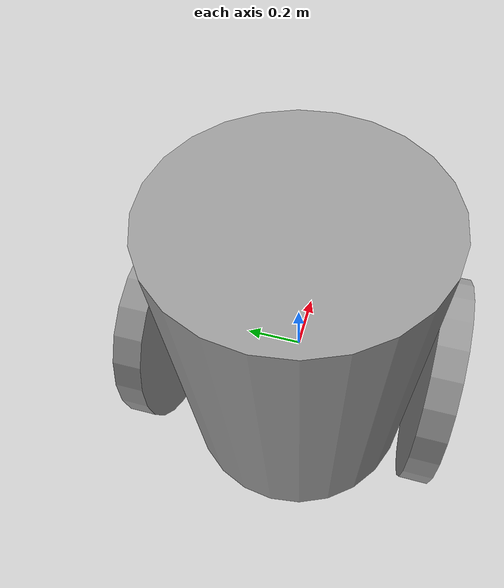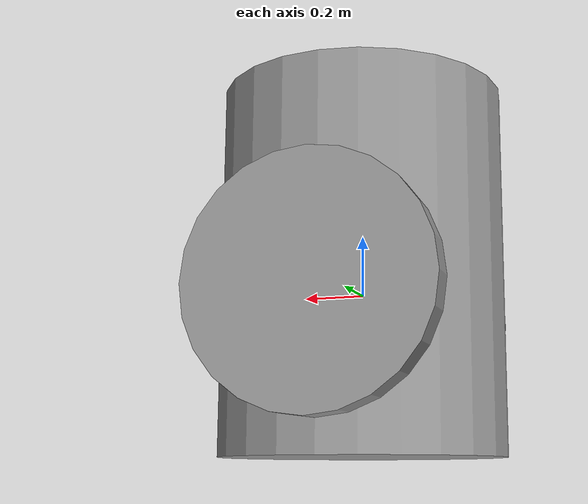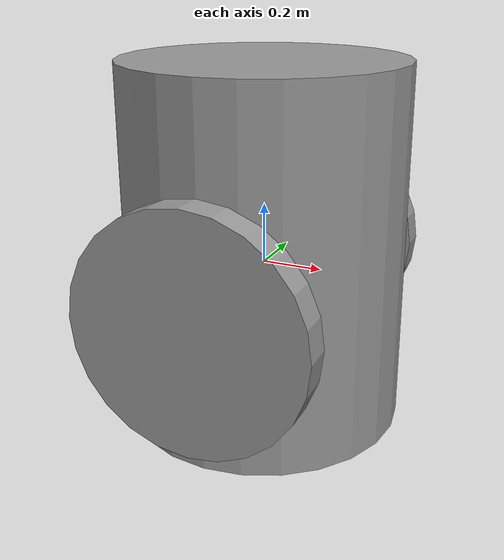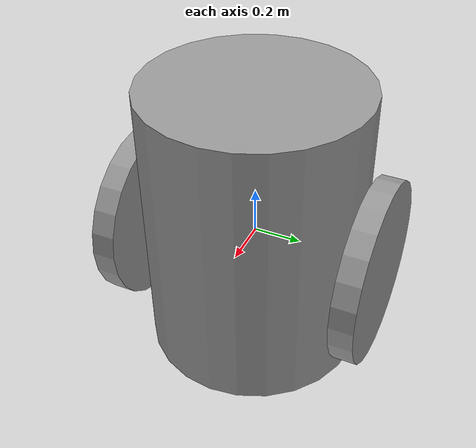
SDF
<?xml version='1.0'?>
<sdf version='1.6'>
  <model name='R'>
    <link name='link_0'>
      <pose frame=''>2e-06 0.515357 -0.037999 1.5707 -0 0</pose>
      <inertial>
        <mass>3.65845</mass>
        <inertia>
          <ixx>0.136893</ixx>
          <ixy>0</ixy>
          <ixz>0</ixz>
          <iyy>0.136893</iyy>
          <iyz>0</iyz>
          <izz>0.267689</izz>
        </inertia>
        <pose frame=''>0 0 0 0 -0 0</pose>
      </inertial>
      <gravity>1</gravity>
      <self_collide>0</self_collide>
      <kinematic>0</kinematic>
      <visual name='visual'>
        <pose frame=''>0 0 0 0 -0 0</pose>
        <geometry>
          <cylinder>
            <radius>0.382544</radius>
            <length>0.1</length>
          </cylinder>
        </geometry>
        <material>
          <lighting>1</lighting>
          <script>
            <uri>file://media/materials/scripts/gazebo.material</uri>
            <name>Gazebo/Grey</name>
          </script>
          <shader type='pixel'>
            <normal_map>__default__</normal_map>
          </shader>
          <ambient>0.3 0.3 0.3 1</ambient>
          <diffuse>0.7 0.7 0.7 1</diffuse>
          <specular>0.01 0.01 0.01 1</specular>
          <emissive>0 0 0 1</emissive>
        </material>
        <transparency>0</transparency>
        <cast_shadows>1</cast_shadows>
      </visual>
      <collision name='collision'>
        <laser_retro>0</laser_retro>
        <max_contacts>10</max_contacts>
        <pose frame=''>0 0 0 0 -0 0</pose>
        <geometry>
          <cylinder>
            <radius>0.382544</radius>
            <length>0.1</length>
          </cylinder>
        </geometry>
        <surface>
          <friction>
            <ode>
              <mu>1</mu>
              <mu2>1</mu2>
              <fdir1>0 0 0</fdir1>
              <slip1>0</slip1>
              <slip2>0</slip2>
            </ode>
            <torsional>
              <coefficient>1</coefficient>
              <patch_radius>0</patch_radius>
              <surface_radius>0</surface_radius>
              <use_patch_radius>1</use_patch_radius>
              <ode>
                <slip>0</slip>
              </ode>
            </torsional>
          </friction>
          <bounce>
            <restitution_coefficient>0</restitution_coefficient>
            <threshold>1e+06</threshold>
          </bounce>
          <contact>
            <collide_without_contact>0</collide_without_contact>
            <collide_without_contact_bitmask>1</collide_without_contact_bitmask>
            <collide_bitmask>1</collide_bitmask>
            <ode>
              <soft_cfm>0</soft_cfm>
              <soft_erp>0.2</soft_erp>
              <kp>1e+13</kp>
              <kd>1</kd>
              <max_vel>0.01</max_vel>
              <min_depth>0</min_depth>
            </ode>
            <bullet>
              <split_impulse>1</split_impulse>
              <split_impulse_penetration_threshold>-0.01</split_impulse_penetration_threshold>
              <soft_cfm>0</soft_cfm>
              <soft_erp>0.2</soft_erp>
              <kp>1e+13</kp>
              <kd>1</kd>
            </bullet>
          </contact>
        </surface>
      </collision>
    </link>
    <link name='link_0_clone_0'>
      <pose frame=''>2e-06 -0.5148 -0.038008 1.5707 -0 0</pose>
      <inertial>
        <mass>3.65845</mass>
        <inertia>
          <ixx>0.136893</ixx>
          <ixy>0</ixy>
          <ixz>0</ixz>
          <iyy>0.136893</iyy>
          <iyz>0</iyz>
          <izz>0.267689</izz>
        </inertia>
        <pose frame=''>0 0 0 0 -0 0</pose>
      </inertial>
      <self_collide>0</self_collide>
      <kinematic>0</kinematic>
      <visual name='visual'>
        <pose frame=''>0 0 0 0 -0 0</pose>
        <geometry>
          <cylinder>
            <radius>0.382544</radius>
            <length>0.1</length>
          </cylinder>
        </geometry>
        <material>
          <lighting>1</lighting>
          <script>
            <uri>file://media/materials/scripts/gazebo.material</uri>
            <name>Gazebo/Grey</name>
          </script>
          <shader type='pixel'>
            <normal_map>__default__</normal_map>
          </shader>
          <ambient>0.3 0.3 0.3 1</ambient>
          <diffuse>0.7 0.7 0.7 1</diffuse>
          <specular>0.01 0.01 0.01 1</specular>
          <emissive>0 0 0 1</emissive>
        </material>
        <transparency>0</transparency>
        <cast_shadows>1</cast_shadows>
      </visual>
      <collision name='collision'>
        <laser_retro>0</laser_retro>
        <max_contacts>10</max_contacts>
        <pose frame=''>0 0 0 0 -0 0</pose>
        <geometry>
          <cylinder>
            <radius>0.382544</radius>
            <length>0.1</length>
          </cylinder>
        </geometry>
        <surface>
          <friction>
            <ode>
              <mu>1</mu>
              <mu2>1</mu2>
              <fdir1>0 0 0</fdir1>
              <slip1>0</slip1>
              <slip2>0</slip2>
            </ode>
            <torsional>
              <coefficient>1</coefficient>
              <patch_radius>0</patch_radius>
              <surface_radius>0</surface_radius>
              <use_patch_radius>1</use_patch_radius>
              <ode>
                <slip>0</slip>
              </ode>
            </torsional>
          </friction>
          <bounce>
            <restitution_coefficient>0</restitution_coefficient>
            <threshold>1e+06</threshold>
          </bounce>
          <contact>
            <collide_without_contact>0</collide_without_contact>
            <collide_without_contact_bitmask>1</collide_without_contact_bitmask>
            <collide_bitmask>1</collide_bitmask>
            <ode>
              <soft_cfm>0</soft_cfm>
              <soft_erp>0.2</soft_erp>
              <kp>1e+13</kp>
              <kd>1</kd>
              <max_vel>0.01</max_vel>
              <min_depth>0</min_depth>
            </ode>
            <bullet>
              <split_impulse>1</split_impulse>
              <split_impulse_penetration_threshold>-0.01</split_impulse_penetration_threshold>
              <soft_cfm>0</soft_cfm>
              <soft_erp>0.2</soft_erp>
              <kp>1e+13</kp>
              <kd>1</kd>
            </bullet>
          </contact>
        </surface>
      </collision>
    </link>
    <link name='link_2'>
      <pose frame=''>2e-06 -0.000564 0.076006 0 -0 0</pose>
      <inertial>
        <mass>1.03049</mass>
        <inertia>
          <ixx>0.178296</ixx>
          <ixy>0</ixy>
          <ixz>0</ixz>
          <iyy>0.178296</iyy>
          <iyz>0</iyz>
          <izz>0.111025</izz>
        </inertia>
        <pose frame=''>0 0 0 0 -0 0</pose>
      </inertial>
      <visual name='visual'>
        <pose frame=''>0 0 0 0 -0 0</pose>
        <geometry>
          <cylinder>
            <radius>0.4642</radius>
            <length>1.19575</length>
          </cylinder>
        </geometry>
        <material>
          <lighting>1</lighting>
          <script>
            <uri>file://media/materials/scripts/gazebo.material</uri>
            <name>Gazebo/Grey</name>
          </script>
          <shader type='pixel'/>
          <ambient>0.3 0.3 0.3 1</ambient>
          <diffuse>0.7 0.7 0.7 1</diffuse>
          <specular>0.01 0.01 0.01 1</specular>
          <emissive>0 0 0 1</emissive>
        </material>
        <transparency>0</transparency>
        <cast_shadows>1</cast_shadows>
      </visual>
      <collision name='collision'>
        <laser_retro>0</laser_retro>
        <max_contacts>10</max_contacts>
        <pose frame=''>0 0 0 0 -0 0</pose>
        <geometry>
          <cylinder>
            <radius>0.4642</radius>
            <length>1.19575</length>
          </cylinder>
        </geometry>
        <surface>
          <friction>
            <ode>
              <mu>1</mu>
              <mu2>1</mu2>
              <fdir1>0 0 0</fdir1>
              <slip1>0</slip1>
              <slip2>0</slip2>
            </ode>
            <torsional>
              <coefficient>1</coefficient>
              <patch_radius>0</patch_radius>
              <surface_radius>0</surface_radius>
              <use_patch_radius>1</use_patch_radius>
              <ode>
                <slip>0</slip>
              </ode>
            </torsional>
          </friction>
          <bounce>
            <restitution_coefficient>0</restitution_coefficient>
            <threshold>1e+06</threshold>
          </bounce>
          <contact>
            <collide_without_contact>0</collide_without_contact>
            <collide_without_contact_bitmask>1</collide_without_contact_bitmask>
            <collide_bitmask>1</collide_bitmask>
            <ode>
              <soft_cfm>0</soft_cfm>
              <soft_erp>0.2</soft_erp>
              <kp>1e+13</kp>
              <kd>1</kd>
              <max_vel>0.01</max_vel>
              <min_depth>0</min_depth>
            </ode>
            <bullet>
              <split_impulse>1</split_impulse>
              <split_impulse_penetration_threshold>-0.01</split_impulse_penetration_threshold>
              <soft_cfm>0</soft_cfm>
              <soft_erp>0.2</soft_erp>
              <kp>1e+13</kp>
              <kd>1</kd>
            </bullet>
          </contact>
        </surface>
      </collision>
    </link>
    <joint name='link_2_JOINT_5' type='revolute'>
      <parent>link_2</parent>
      <child>link_0_clone_0</child>
      <pose frame=''>0 0 0 0 -0 0</pose>
      <axis>
        <xyz>0 0 1</xyz>
        <use_parent_model_frame>0</use_parent_model_frame>
        <limit>
          <lower>-1.79769e+308</lower>
          <upper>1.79769e+308</upper>
          <effort>-1</effort>
          <velocity>-1</velocity>
        </limit>
        <dynamics>
          <spring_reference>0</spring_reference>
          <spring_stiffness>0</spring_stiffness>
          <damping>0</damping>
        </dynamics>
      </axis>
      <physics>
        <ode>
          <limit>
            <cfm>0</cfm>
            <erp>0.2</erp>
          </limit>
          <suspension>
            <cfm>0</cfm>
            <erp>0.2</erp>
          </suspension>
        </ode>
      </physics>
    </joint>
    <joint name='link_2_JOINT_7' type='revolute'>
      <parent>link_2</parent>
      <child>link_0</child>
      <pose frame=''>0 0 0 0 -0 0</pose>
      <axis>
        <xyz>0 0 1</xyz>
        <use_parent_model_frame>0</use_parent_model_frame>
        <limit>
          <lower>-1.79769e+308</lower>
          <upper>1.79769e+308</upper>
          <effort>-1</effort>
          <velocity>-1</velocity>
        </limit>
        <dynamics>
          <spring_reference>0</spring_reference>
          <spring_stiffness>0</spring_stiffness>
          <damping>0</damping>
        </dynamics>
      </axis>
      <physics>
        <ode>
          <limit>
            <cfm>0</cfm>
            <erp>0.2</erp>
          </limit>
          <suspension>
            <cfm>0</cfm>
            <erp>0.2</erp>
          </suspension>
        </ode>
      </physics>
    </joint>
    <static>0</static>
    <allow_auto_disable>1</allow_auto_disable>
  </model>
</sdf>
